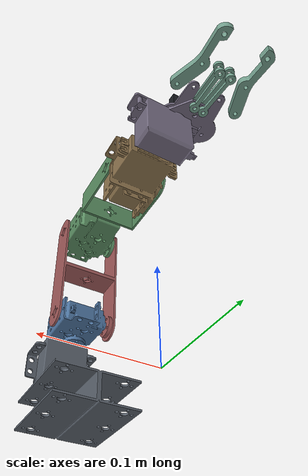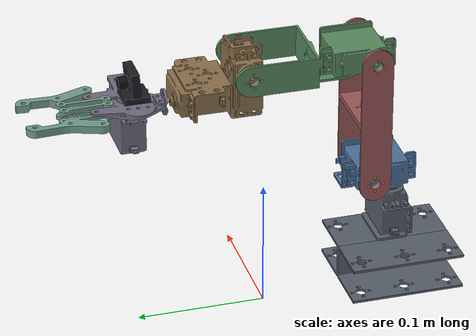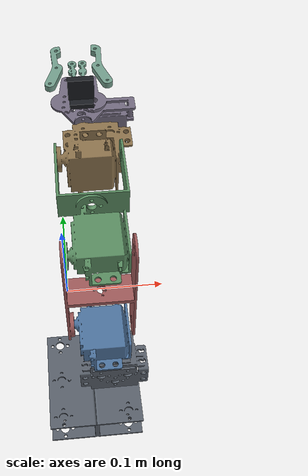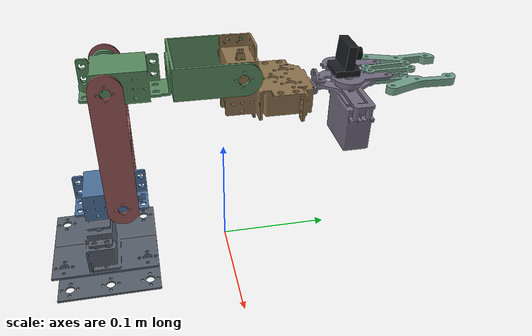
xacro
<?xml version="1.0"?>
<robot name="o5_2_arm" xmlns:xacro="http://www.ros.org/wiki/xacro">

  <!-- 1. 纯模型 + 相机 -->
  <xacro:include filename="$(find arm_description)/urdf/arm.urdf.xacro"/>

  <!-- 2. ros2_control 接口声明（只是声明，不含硬件实现） -->
  <xacro:include filename="$(find arm_description)/urdf/arm.ros2_control.xacro"/>

  <!-- 3. 实例化接口：仿真侧的硬件插件是 gz_ros2_control/GazeboSimSystem
         （它内部保留了 ign_ros2_control/IgnitionSystem 的兼容别名） -->
  <xacro:arm_ros2_control name="ArmSystem"
                          plugin_name="gz_ros2_control/GazeboSimSystem"/>

  <!-- 4. 让 Gazebo 加载 ros2_control 系统插件。
         controller_manager 节点就是由这个插件在仿真进程内注册的，
         所以外部不要再起 ros2_control_node，否则会撞名。 -->
  <gazebo>
    <plugin filename="gz_ros2_control-system"
            name="gz_ros2_control::GazeboSimROS2ControlPlugin">
      <parameters>$(find arm_bringup)/config/arm_controllers.yaml</parameters>
    </plugin>
  </gazebo>

  <xacro:macro name="arm_contact" params="link mu:=0.90">
    <gazebo reference="${link}">
      <mu1>${mu}</mu1>
      <mu2>${mu}</mu2>
      <kp>1000000</kp>
      <kd>100</kd>
      <minDepth>0.001</minDepth>
      <maxVel>0.01</maxVel>
      <selfCollide>false</selfCollide>
    </gazebo>
  </xacro:macro>

  <xacro:arm_contact link="base_plate"/>
  <xacro:arm_contact link="top_plate"/>
  <xacro:arm_contact link="lower_arm"/>
  <xacro:arm_contact link="upper_arm"/>
  <xacro:arm_contact link="wrist"/>
  <xacro:arm_contact link="claw_base"/>
  <xacro:arm_contact link="right_claw" mu="1.50"/>
  <xacro:arm_contact link="left_claw" mu="1.50"/>

</robot>

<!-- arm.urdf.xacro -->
<!--
  arm.urdf.xacro — 显示用总装

  只做装配，供 RViz 查看（robot_state_publisher / joint_state_publisher_gui）。
  不含任何 Gazebo 或 ros2_control 内容。

  展开： xacro arm.urdf.xacro > /tmp/arm.urdf
-->
<robot name="o5_2_arm" xmlns:xacro="http://www.ros.org/wiki/xacro">

  <!-- use_camera:=false 只关掉 Gazebo 传感器，相机的 link/关节仍在模型里
       （SRDF 的碰撞矩阵引用了它们，不能缺） -->
  <xacro:arg name="use_camera" default="true"/>

  <!-- 纯模型：连杆 + 关节 -->
  <xacro:include filename="$(find arm_description)/urdf/arm_core.xacro"/>

  <!-- 腕部相机 -->
  <xacro:include filename="$(find arm_description)/urdf/arm_camera.xacro"/>
  <xacro:arm_camera enable_sensor="$(arg use_camera)"/>

</robot>

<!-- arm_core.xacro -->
<robot name="o5_2_arm" xmlns:xacro="http://www.ros.org/wiki/xacro">

  <!-- 惯量宏。用相对路径 include，这样本文件从任何位置都能单独展开 -->
  <xacro:include filename="inertial_macros.xacro"/>

  <xacro:property name="top_plate_xyz" value=" 0.027037  0.073566  0.111677"/>  <!-- base_plate -> top_plate -->
  <xacro:property name="lower_arm_xyz" value="-0.022766  0.013792 -0.021575"/>  <!-- top_plate  -> lower_arm -->
  <xacro:property name="upper_arm_xyz" value="-0.000001  0.102000  0.000233"/>  <!-- lower_arm  -> upper_arm -->
  <xacro:property name="wrist_xyz"     value="-0.000117  0.001961 -0.097505"/>  <!-- upper_arm  -> wrist -->
  <xacro:property name="claw_base_xyz" value=" 0.023268 -0.021198 -0.060004"/>  <!-- wrist      -> claw_base -->
  <xacro:property name="right_claw_xyz" value="-0.005843  0.006182 -0.082410"/> <!-- claw_base  -> 主动指 -->
  <xacro:property name="left_claw_xyz"  value=" 0.004233  0.006188 -0.082440"/> <!-- claw_base  -> 从动指 -->

  <xacro:property name="top_plate_axis" value="0 1 0"/>   <!-- 底座回转（因整体 +90° about X，等效世界 Z 轴） -->
  <xacro:property name="lower_arm_axis" value="1 0 0"/>
  <xacro:property name="upper_arm_axis" value="-1 0 0"/>  <!-- 与 lower_arm 反向，构成肘部 -->
  <xacro:property name="wrist_axis"     value="1 0 0"/>
  <xacro:property name="claw_base_axis" value="0 0 -1"/>  <!-- 腕部回转 -->
  <!-- 夹爪两指都绕 Y 轴旋转（Y 垂直于「两指分开方向 X」与「手指伸出方向 Z」），
      两指因此都在 XZ 平面内摆动，朝对侧咬合。
      配合 mimic multiplier = -1，两指反向等量转动 = 对称开合。 -->
  <xacro:property name="right_claw_axis" value="0 1 0"/>
  <xacro:property name="left_claw_axis"  value="0 1 0"/>

  <xacro:property name="arm_joint_lower"    value="-1.5708"/>
  <xacro:property name="arm_joint_upper"    value=" 1.5708"/>
  <xacro:property name="arm_joint_effort"   value="10.0"/>
  <xacro:property name="arm_joint_velocity" value="3.0"/>
  <xacro:property name="arm_joint_damping"  value="0.10"/>
  <xacro:property name="arm_joint_friction" value="0.05"/>

  <!-- 夹爪：两个「绕轴旋转」的手指，单位 rad
       注意：这里刻意不用 prismatic（平移）关节，理由见文件末尾「夹爪方案」一节。
       0.0 = 竖直张开位（两指夹持面间距 29.3 mm）
       负方向 = 闭合。限位取 0.90 rad 是算出来的：再转到 0.93 rad 两指面就
       刚好接触，留 ~0.9 mm 余量避免碰撞求解器抖动。 -->
  <xacro:property name="claw_angle_limit" value="0.90"/>
  <xacro:property name="claw_effort"      value="20.0"/>
  <xacro:property name="claw_velocity"    value="0.5"/>

  <!-- base_plate：底板×2 + U 型支架 + 舵机 -->
  <xacro:property name="base_plate_mass" value="0.143933"/>
  <xacro:property name="base_plate_com"  value="0.025064 0.022051 0.112311"/>
  <xacro:property name="base_plate_inertia"
                  value="0.000126612 -0.000019091 -0.000000919 0.000126343 -0.000001582 0.000117666"/>

  <!-- top_plate：U 型支架 + 舵机 + 舵盘 -->
  <xacro:property name="top_plate_mass" value="0.046643"/>
  <xacro:property name="top_plate_com"  value="0.005075 0.011879 -0.011367"/>
  <xacro:property name="top_plate_inertia"
                  value="0.000010852 0.000000018 0.000000001 0.000015620 0.000000108 0.000009424"/>

  <!-- lower_arm：脚板×2 + 舵盘 -->
  <xacro:property name="lower_arm_mass" value="0.046795"/>
  <xacro:property name="lower_arm_com"  value="0.024278 0.050027 0.000189"/>
  <xacro:property name="lower_arm_inertia"
                  value="0.000044988 -0.000001104 -0.000000082 0.000030746 -0.000000095 0.000070850"/>

  <!-- upper_arm：连接件 + U 型支架 + 脚板 + 舵机 + 舵盘 -->
  <xacro:property name="upper_arm_mass" value="0.076498"/>
  <xacro:property name="upper_arm_com"  value="0.026187 -0.001149 -0.029551"/>
  <xacro:property name="upper_arm_inertia"
                  value="0.000075951 0.000000103 -0.000002484 0.000093725 0.000003223 0.000026592"/>

  <!-- wrist：U 型支架×2 + 舵机×2 + 舵盘 -->
  <xacro:property name="wrist_mass" value="0.092393"/>
  <xacro:property name="wrist_com"  value="0.030387 -0.014556 -0.016633"/>
  <xacro:property name="wrist_inertia"
                  value="0.000043585 0.000001605 0.000004130 0.000047614 -0.000006950 0.000029831"/>

  <!-- claw_base：夹爪底座 + 齿轮×2 + 舵机 + 舵盘 + 销 -->
  <xacro:property name="claw_base_mass" value="0.039722"/>
  <xacro:property name="claw_base_com"  value="0.017716 -0.017188 -0.026802"/>
  <xacro:property name="claw_base_inertia"
                  value="0.000010477 0.000002797 -0.000000127 0.000011200 0.000000207 0.000016538"/>

  <!-- 夹爪手指：手指板×2 + 连杆×2 -->
  <xacro:property name="right_claw_mass" value="0.003953"/>
  <xacro:property name="right_claw_com"  value="-0.012800 -0.004503 0.006606"/>
  <xacro:property name="right_claw_inertia"
                  value="0.000001276 -0.000000000 -0.000000131 0.000001545 -0.000000001 0.000000328"/>

  <xacro:property name="left_claw_mass" value="0.003953"/>
  <xacro:property name="left_claw_com"  value="0.013221 -0.004487 0.006543"/>
  <xacro:property name="left_claw_inertia"
                  value="0.000001279 -0.000000000 0.000000108 0.000001525 -0.000000001 0.000000306"/>

  <xacro:property name="right_claw_col_origin" value="-0.015500 -0.004500 -0.013500"/>
  <xacro:property name="left_claw_col_origin"  value=" 0.015700 -0.004500 -0.013500"/>
  <xacro:property name="claw_col_size"         value=" 0.012000  0.012000  0.037000"/>

  <!-- ==========================================================================
       六、材质颜色（RViz 显示用）
       ========================================================================== -->
  <xacro:property name="color_base_plate" value="0.35 0.38 0.42 1.0"/>
  <xacro:property name="color_top_plate"  value="0.30 0.45 0.62 1.0"/>
  <xacro:property name="color_lower_arm"  value="0.62 0.35 0.35 1.0"/>
  <xacro:property name="color_upper_arm"  value="0.35 0.55 0.38 1.0"/>
  <xacro:property name="color_wrist"      value="0.55 0.45 0.30 1.0"/>
  <xacro:property name="color_claw_base"  value="0.45 0.42 0.50 1.0"/>
  <xacro:property name="color_claw"       value="0.45 0.62 0.55 1.0"/>

  <material name="base_plate_color"><color rgba="${color_base_plate}"/></material>
  <material name="top_plate_color"><color rgba="${color_top_plate}"/></material>
  <material name="lower_arm_color"><color rgba="${color_lower_arm}"/></material>
  <material name="upper_arm_color"><color rgba="${color_upper_arm}"/></material>
  <material name="wrist_color"><color rgba="${color_wrist}"/></material>
  <material name="claw_base_color"><color rgba="${color_claw_base}"/></material>
  <material name="claw_color"><color rgba="${color_claw}"/></material>

  <link name="world"/>

  <joint name="world_base_link_joint" type="fixed">
    <parent link="world"/>
    <child  link="base_link"/>
    <origin xyz="0 0 0" rpy="0 0 0"/>
  </joint>

  <link name="base_link"/>

  <joint name="base_plate_joint" type="fixed">
    <parent link="base_link"/>
    <child  link="base_plate"/>
    <origin xyz="0 0 0" rpy="${pi/2} 0 0"/>
  </joint>

  <!-- ==========================================================================
       八、通用宏
       ========================================================================== -->

  <!-- 连杆：mesh 视觉 + mesh 碰撞 + CAD 精确惯量（走 inertial_macros 的 tensor_inertia） -->
  <xacro:macro name="arm_link" params="name mesh_file color mass com inertia">
    <link name="${name}">
      <visual>
        <origin xyz="0 0 0" rpy="0 0 0"/>
        <geometry><mesh filename="package://arm_description/meshes/${mesh_file}"/></geometry>
        <material name="${color}"/>
      </visual>
      <collision>
        <origin xyz="0 0 0" rpy="0 0 0"/>
        <geometry><mesh filename="package://arm_description/meshes/${mesh_file}"/></geometry>
      </collision>
      <xacro:tensor_inertia mass="${mass}" com="${com}" inertia="${inertia}"/>
    </link>
  </xacro:macro>

  <!-- 连杆：mesh 视觉 + box 碰撞（夹爪手指用） -->
  <xacro:macro name="arm_link_boxcollision"
               params="name mesh_file color mass com inertia col_origin col_size">
    <link name="${name}">
      <visual>
        <origin xyz="0 0 0" rpy="0 0 0"/>
        <geometry><mesh filename="package://arm_description/meshes/${mesh_file}"/></geometry>
        <material name="${color}"/>
      </visual>
      <collision>
        <origin xyz="${col_origin}" rpy="0 0 0"/>
        <geometry><box size="${col_size}"/></geometry>
      </collision>
      <xacro:tensor_inertia mass="${mass}" com="${com}" inertia="${inertia}"/>
    </link>
  </xacro:macro>

  <!-- 旋转关节 -->
  <xacro:macro name="arm_revolute_joint" params="name parent child origin axis">
    <joint name="${name}" type="revolute">
      <parent link="${parent}"/>
      <child  link="${child}"/>
      <origin xyz="${origin}" rpy="0 0 0"/>
      <axis xyz="${axis}"/>
      <limit lower="${arm_joint_lower}" upper="${arm_joint_upper}"
             effort="${arm_joint_effort}" velocity="${arm_joint_velocity}"/>
      <dynamics damping="${arm_joint_damping}" friction="${arm_joint_friction}"/>
    </joint>
  </xacro:macro>

  <xacro:arm_link name="base_plate" mesh_file="base_plate.stl" color="base_plate_color"
                  mass="${base_plate_mass}" com="${base_plate_com}" inertia="${base_plate_inertia}"/>
  <xacro:arm_link name="top_plate" mesh_file="top_plate.stl" color="top_plate_color"
                  mass="${top_plate_mass}" com="${top_plate_com}" inertia="${top_plate_inertia}"/>
  <xacro:arm_link name="lower_arm" mesh_file="lower_arm.stl" color="lower_arm_color"
                  mass="${lower_arm_mass}" com="${lower_arm_com}" inertia="${lower_arm_inertia}"/>
  <xacro:arm_link name="upper_arm" mesh_file="upper_arm.stl" color="upper_arm_color"
                  mass="${upper_arm_mass}" com="${upper_arm_com}" inertia="${upper_arm_inertia}"/>
  <xacro:arm_link name="wrist" mesh_file="wrist.stl" color="wrist_color"
                  mass="${wrist_mass}" com="${wrist_com}" inertia="${wrist_inertia}"/>
  <xacro:arm_link name="claw_base" mesh_file="claw_base.stl" color="claw_base_color"
                  mass="${claw_base_mass}" com="${claw_base_com}" inertia="${claw_base_inertia}"/>

  <xacro:arm_link_boxcollision name="right_claw" mesh_file="right_claw.stl" color="claw_color"
                               mass="${right_claw_mass}" com="${right_claw_com}" inertia="${right_claw_inertia}"
                               col_origin="${right_claw_col_origin}" col_size="${claw_col_size}"/>
  <xacro:arm_link_boxcollision name="left_claw" mesh_file="left_claw.stl" color="claw_color"
                               mass="${left_claw_mass}" com="${left_claw_com}" inertia="${left_claw_inertia}"
                               col_origin="${left_claw_col_origin}" col_size="${claw_col_size}"/>

  <!-- ==========================================================================
       十、关节实例
       ========================================================================== -->
  <xacro:arm_revolute_joint name="top_plate_joint" parent="base_plate" child="top_plate"
                            origin="${top_plate_xyz}" axis="${top_plate_axis}"/>
  <xacro:arm_revolute_joint name="lower_arm_joint" parent="top_plate" child="lower_arm"
                            origin="${lower_arm_xyz}" axis="${lower_arm_axis}"/>
  <xacro:arm_revolute_joint name="upper_arm_joint" parent="lower_arm" child="upper_arm"
                            origin="${upper_arm_xyz}" axis="${upper_arm_axis}"/>
  <xacro:arm_revolute_joint name="wrist_joint" parent="upper_arm" child="wrist"
                            origin="${wrist_xyz}" axis="${wrist_axis}"/>
  <xacro:arm_revolute_joint name="claw_base_joint" parent="wrist" child="claw_base"
                            origin="${claw_base_xyz}" axis="${claw_base_axis}"/>

  <!-- 主动指 -->
  <joint name="right_claw_joint" type="revolute">
    <parent link="claw_base"/>
    <child  link="right_claw"/>
    <origin xyz="${right_claw_xyz}" rpy="0 0 0"/>
    <axis xyz="${right_claw_axis}"/>
    <limit lower="-${claw_angle_limit}" upper="0.0"
           effort="${claw_effort}" velocity="${claw_velocity}"/>
    <dynamics damping="${arm_joint_damping}" friction="${arm_joint_friction}"/>
  </joint>

  <!-- 从动指：值 = 主动指 × (-1)，天然对称，不需要单独控制器 -->
  <joint name="left_claw_joint" type="revolute">
    <parent link="claw_base"/>
    <child  link="left_claw"/>
    <origin xyz="${left_claw_xyz}" rpy="0 0 0"/>
    <axis xyz="${left_claw_axis}"/>
    <limit lower="0.0" upper="${claw_angle_limit}"
           effort="${claw_effort}" velocity="${claw_velocity}"/>
    <dynamics damping="${arm_joint_damping}" friction="${arm_joint_friction}"/>
    <mimic joint="right_claw_joint" multiplier="-1" offset="0"/>
  </joint>

  <link name="tcp"/>

  <joint name="tcp_joint" type="fixed">
    <parent link="claw_base"/>
    <child  link="tcp"/>
    <origin xyz="-0.000705 0.001685 -0.095925" rpy="3.141593 0 0"/>
  </joint>

</robot>

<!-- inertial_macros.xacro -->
<robot xmlns:xacro="http://www.ros.org/wiki/xacro">

  <xacro:macro name="box_inertia" params="mass length width height *origin">
    <inertial>
      <xacro:insert_block name="origin"/>
      <mass value="${mass}"/>
      <inertia ixx="${(mass/12) * (width*width + height*height)}" ixy="0.0" ixz="0.0"
               iyy="${(mass/12) * (length*length + height*height)}" iyz="0.0"
               izz="${(mass/12) * (length*length + width*width)}"/>
    </inertial>
  </xacro:macro>

  <xacro:macro name="cylinder_inertia" params="mass length radius *origin">
    <inertial>
      <xacro:insert_block name="origin"/>
      <mass value="${mass}"/>
      <inertia ixx="${(1/12) * mass * (3*radius*radius + length*length)}" ixy="0.0" ixz="0.0"
               iyy="${(1/12) * mass * (3*radius*radius + length*length)}" iyz="0.0"
               izz="${(1/2) * mass * (radius*radius)}"/>
    </inertial>
  </xacro:macro>

  <xacro:macro name="tensor_inertia" params="mass com inertia">
    <inertial>
      <origin xyz="${com}" rpy="0 0 0"/>
      <mass value="${mass}"/>
      <inertia ixx="${inertia.split(' ')[0]}" ixy="${inertia.split(' ')[1]}"
               ixz="${inertia.split(' ')[2]}" iyy="${inertia.split(' ')[3]}"
               iyz="${inertia.split(' ')[4]}" izz="${inertia.split(' ')[5]}"/>
    </inertial>
  </xacro:macro>

</robot>

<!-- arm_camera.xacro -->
<robot xmlns:xacro="http://www.ros.org/wiki/xacro">

  <xacro:property name="color_cam_body" value="0.10 0.11 0.13 1.0"/>
  <xacro:property name="color_cam_lens" value="0.05 0.05 0.06 1.0"/>
  <xacro:property name="cam_deg_to_rad" value="0.01745329252"/>

  <material name="cam_body_color"><color rgba="${color_cam_body}"/></material>
  <material name="cam_lens_color"><color rgba="${color_cam_lens}"/></material>

  <xacro:macro name="arm_camera" params="enable_sensor:=true">

    <!-- ============================================================
         一、相机本体 link
         由 3 个几何体拼成：底脚 + 主板 + 镜头
         ============================================================ -->
    <link name="wrist_cam_link">

      <!-- 底脚（平贴腕板） -->
      <visual>
        <origin xyz="0.000000 0.000000 -0.012545" rpy="1.655340 -0.000000 -1.570796"/>
        <geometry><box size="0.022000 0.005000 0.020000"/></geometry>
        <material name="cam_body_color"/>
      </visual>

      <!-- 主板 -->
      <visual>
        <origin xyz="0 0 0" rpy="0 0 0"/>
        <geometry><box size="0.007000 0.024000 0.020000"/></geometry>
        <material name="cam_body_color"/>
      </visual>

      <!-- 镜头 -->
      <visual>
        <origin xyz="0.007500 0 0" rpy="0 1.5707963 0"/>
        <geometry><cylinder radius="0.005000" length="0.008000"/></geometry>
        <material name="cam_lens_color"/>
      </visual>

      <!-- 碰撞体：用主板 box 近似整个模块 -->
      <collision>
        <origin xyz="0 0 0" rpy="0 0 0"/>
        <geometry><box size="0.007000 0.024000 0.020000"/></geometry>
      </collision>

      <!-- 质量 10 g，惯量按 7×24×20 mm 长方体估算 -->
      <inertial>
        <origin xyz="0 0 0" rpy="0 0 0"/>
        <mass value="0.010"/>
        <inertia ixx="0.000000813" ixy="0" ixz="0"
                 iyy="0.000000374" iyz="0" izz="0.000000521"/>
      </inertial>
    </link>

    <joint name="wrist_cam_mount_joint" type="fixed">
      <parent link="claw_base"/>
      <child  link="wrist_cam_link"/>
      <origin xyz="0.000000 0.022000 -0.027000" rpy="-3.141593 1.486253 -1.570796"/>
    </joint>

    <link name="wrist_cam_optical_frame"/>

    <joint name="wrist_cam_optical_joint" type="fixed">
      <parent link="wrist_cam_link"/>
      <child  link="wrist_cam_optical_frame"/>
      <origin xyz="0 0 0" rpy="${-pi/2} 0 ${-pi/2}"/>
    </joint>

    <xacro:if value="${enable_sensor}">
    <gazebo reference="wrist_cam_link">
      <sensor name="wrist_cam" type="camera">
        <pose>0 0 0 0 0 0</pose>
        <always_on>1</always_on>
        <update_rate>10</update_rate>
        <visualize>false</visualize>
        <topic>wrist_cam/image</topic>
        <gz_frame_id>wrist_cam_optical_frame</gz_frame_id>
        <camera name="wrist_cam">
          <horizontal_fov>${60.0 * cam_deg_to_rad}</horizontal_fov>
          <image>
            <width>320</width>
            <height>240</height>
            <format>R8G8B8</format>
          </image>
          <clip>
            <near>0.02</near>
            <far>10</far>
          </clip>
          <noise>
            <type>gaussian</type>
            <mean>0.0</mean>
            <stddev>0.007</stddev>
          </noise>
        </camera>
      </sensor>
    </gazebo>
    </xacro:if>

  </xacro:macro>

</robot>
